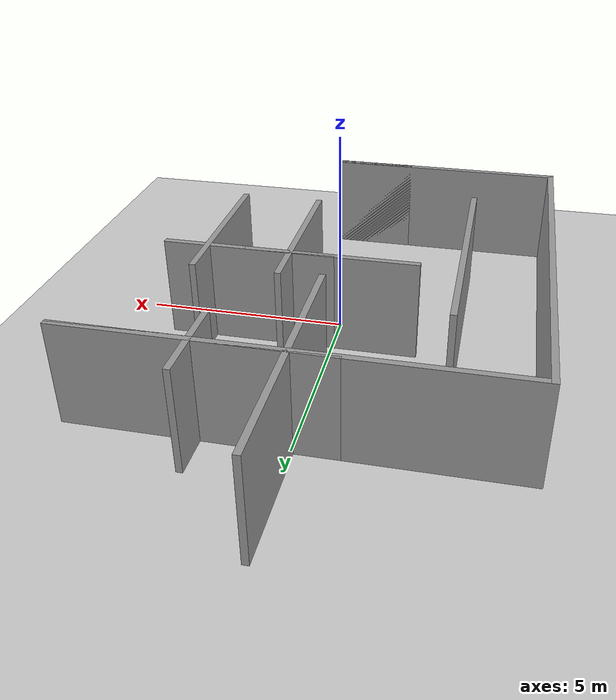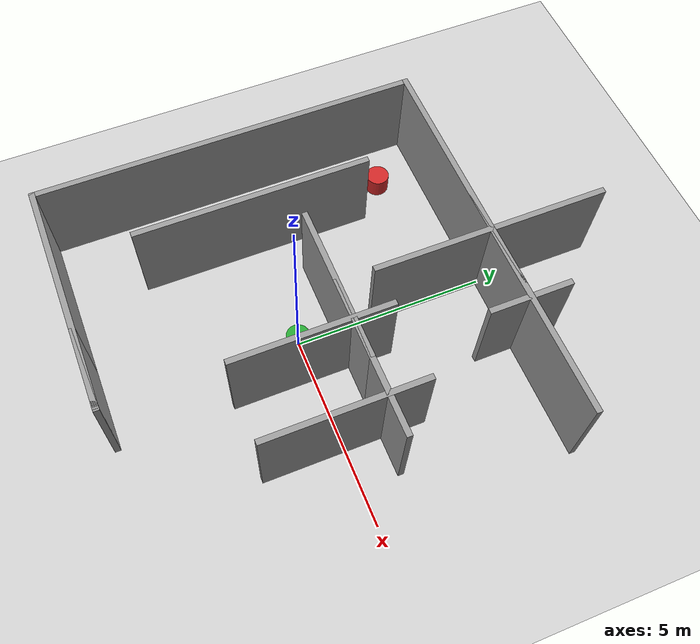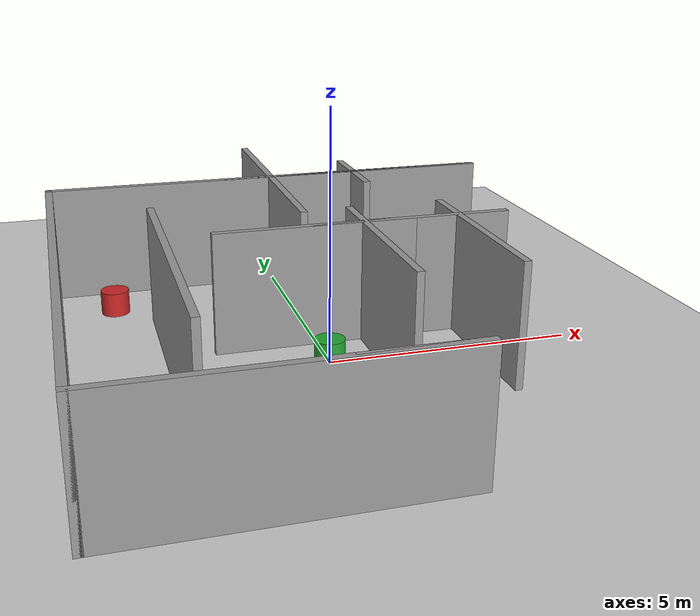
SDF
<sdf version="1.6">
 <world name="default">
  <light name="sun" type="directional">
   <pose>0 0 10 0 -0 0</pose>
   <diffuse>0.8 0.8 0.8 1</diffuse>
   <specular>0.2 0.2 0.2 1</specular>
   <attenuation>
    <range>1000</range>
    <constant>0.9</constant>
    <linear>0.01</linear>
    <quadratic>0.001</quadratic>
   </attenuation>
   <direction>-0.5 0.1 -0.9</direction>
  </light>
  <model name="ground_plane">
   <static>1</static>
   <link name="link">
    <collision name="collision">
     <geometry><plane><normal>0 0 1</normal><size>100 100</size></plane></geometry>
     <surface><friction><ode><mu>100</mu><mu2>50</mu2></ode></friction></surface>
    </collision>
    <visual name="visual">
     <cast_shadows>0</cast_shadows>
     <geometry><plane><normal>0 0 1</normal><size>100 100</size></plane></geometry>
     <material>
      <script><uri>file://media/materials/scripts/gazebo.material</uri><name>Gazebo/Grey</name></script>
     </material>
    </visual>
   </link>
  </model>
  <gravity>0 0 -9.8</gravity>
  <magnetic_field>6e-06 2.3e-05 -4.2e-05</magnetic_field>
  <atmosphere type="adiabatic"/>
  <physics name="default_physics" default="0" type="ode">
   <max_step_size>0.001</max_step_size>
   <real_time_factor>1</real_time_factor>
   <real_time_update_rate>1000</real_time_update_rate>
  </physics>
  <scene><ambient>0.4 0.4 0.4 1</ambient><background>0.7 0.7 0.7 1</background><shadows>1</shadows></scene>
  <spherical_coordinates>
   <surface_model>EARTH_WGS84</surface_model>
   <latitude_deg>0</latitude_deg>
   <longitude_deg>0</longitude_deg>
   <elevation>0</elevation>
   <heading_deg>0</heading_deg>
  </spherical_coordinates>
  <model name="outside">
   <link name="Wall_0">
    <collision name="Wall_0_Collision">
     <geometry><box><size>10.15 0.15 2.5</size></box></geometry>
     <pose>0 0 1.25 0 -0 0</pose>
    </collision>
    <visual name="Wall_0_Visual">
     <pose>0 0 1.25 0 -0 0</pose>
     <geometry><box><size>10.15 0.15 2.5</size></box></geometry>
     <material>
      <script><uri>file://media/materials/scripts/gazebo.material</uri><name>Gazebo/Grey</name></script>
      <ambient>1 1 1 1</ambient>
     </material>
     <meta><layer>0</layer></meta>
    </visual>
    <pose>-5 0 0 0 -0 -1.5708</pose>
   </link>
   <link name="Wall_1">
    <collision name="Wall_1_Collision">
     <geometry><box><size>6.15 0.15 2.5</size></box></geometry>
     <pose>0 0 1.25 0 -0 0</pose>
    </collision>
    <visual name="Wall_1_Visual">
     <pose>0 0 1.25 0 -0 0</pose>
     <geometry><box><size>6.15 0.15 2.5</size></box></geometry>
     <material>
      <script><uri>file://media/materials/scripts/gazebo.material</uri><name>Gazebo/Grey</name></script>
      <ambient>1 1 1 1</ambient>
     </material>
     <meta><layer>0</layer></meta>
    </visual>
    <pose>-2 -5 0 0 -0 0</pose>
   </link>
   <link name="Wall_2">
    <collision name="Wall_2_Collision">
     <geometry><box><size>4.15 0.15 2.5</size></box></geometry>
     <pose>0 0 1.25 0 -0 0</pose>
    </collision>
    <visual name="Wall_2_Visual">
     <pose>0 0 1.25 0 -0 0</pose>
     <geometry><box><size>4.15 0.15 2.5</size></box></geometry>
     <material>
      <script><uri>file://media/materials/scripts/gazebo.material</uri><name>Gazebo/Grey</name></script>
      <ambient>1 1 1 1</ambient>
     </material>
     <meta><layer>0</layer></meta>
    </visual>
    <pose>1 0 0 0 -0 1.5708</pose>
   </link>
   <link name="Wall_3">
    <collision name="Wall_3_Collision">
     <geometry><box><size>4.15 0.15 2.5</size></box></geometry>
     <pose>0 0 1.25 0 -0 0</pose>
    </collision>
    <visual name="Wall_3_Visual">
     <pose>0 0 1.25 0 -0 0</pose>
     <geometry><box><size>4.15 0.15 2.5</size></box></geometry>
     <material>
      <script><uri>file://media/materials/scripts/gazebo.material</uri><name>Gazebo/Grey</name></script>
      <ambient>1 1 1 1</ambient>
     </material>
     <meta><layer>0</layer></meta>
    </visual>
    <pose>0 1 0 0 -0 3.14159</pose>
   </link>
   <link name="Wall_4">
    <collision name="Wall_4_Collision">
     <geometry><box><size>6.15 0.15 2.5</size></box></geometry>
     <pose>0 0 1.25 0 -0 0</pose>
    </collision>
    <visual name="Wall_4_Visual">
     <pose>0 0 1.25 0 -0 0</pose>
     <geometry><box><size>6.15 0.15 2.5</size></box></geometry>
     <material>
      <script><uri>file://media/materials/scripts/gazebo.material</uri><name>Gazebo/Grey</name></script>
      <ambient>1 1 1 1</ambient>
     </material>
     <meta><layer>0</layer></meta>
    </visual>
    <pose>0 5 0 0 -0 1.5708</pose>
   </link>
   <link name="Wall_5">
    <collision name="Wall_5_Collision">
     <geometry><box><size>10.15 0.15 2.5</size></box></geometry>
     <pose>0 0 1.25 0 -0 0</pose>
    </collision>
    <visual name="Wall_5_Visual">
     <pose>0 0 1.25 0 -0 0</pose>
     <geometry><box><size>10.15 0.15 2.5</size></box></geometry>
     <material>
      <script><uri>file://media/materials/scripts/gazebo.material</uri><name>Gazebo/Grey</name></script>
      <ambient>1 1 1 1</ambient>
     </material>
     <meta><layer>0</layer></meta>
    </visual>
    <pose>0 5 0 0 -0 3.14159</pose>
   </link>
   <static>1</static>
  </model>
  <model name="inside">
   <pose>2 -0 0 0 -0 0</pose>
   <link name="Wall_0">
    <collision name="Wall_0_Collision">
     <geometry><box><size>6.15 0.15 2.5</size></box></geometry>
     <pose>0 0 1.25 0 -0 0</pose>
    </collision>
    <visual name="Wall_0_Visual">
     <pose>0 0 1.25 0 -0 0</pose>
     <geometry><box><size>6.15 0.15 2.5</size></box></geometry>
     <material>
      <script><uri>file://media/materials/scripts/gazebo.material</uri><name>Gazebo/Grey</name></script>
      <ambient>1 1 1 1</ambient>
     </material>
     <meta><layer>0</layer></meta>
    </visual>
    <pose>-5 0 0 0 -0 -1.5708</pose>
   </link>
   <link name="Wall_1">
    <collision name="Wall_1_Collision">
     <geometry><box><size>2.15 0.15 2.5</size></box></geometry>
     <pose>0 0 1.25 0 -0 0</pose>
    </collision>
    <visual name="Wall_1_Visual">
     <pose>0 0 1.25 0 -0 0</pose>
     <geometry><box><size>2.15 0.15 2.5</size></box></geometry>
     <material>
      <script><uri>file://media/materials/scripts/gazebo.material</uri><name>Gazebo/Grey</name></script>
      <ambient>1 1 1 1</ambient>
     </material>
     <meta><layer>0</layer></meta>
    </visual>
    <pose>-2 -5 0 0 -0 0</pose>
   </link>
   <link name="Wall_2">
    <collision name="Wall_2_Collision">
     <geometry><box><size>4.15 0.15 2.5</size></box></geometry>
     <pose>0 0 1.25 0 -0 0</pose>
    </collision>
    <visual name="Wall_2_Visual">
     <pose>0 0 1.25 0 -0 0</pose>
     <geometry><box><size>4.15 0.15 2.5</size></box></geometry>
     <material>
      <script><uri>file://media/materials/scripts/gazebo.material</uri><name>Gazebo/Grey</name></script>
      <ambient>1 1 1 1</ambient>
     </material>
     <meta><layer>0</layer></meta>
    </visual>
    <pose>1 0 0 0 -0 1.5708</pose>
   </link>
   <link name="Wall_3">
    <collision name="Wall_3_Collision">
     <geometry><box><size>4.15 0.15 2.5</size></box></geometry>
     <pose>0 0 1.25 0 -0 0</pose>
    </collision>
    <visual name="Wall_3_Visual">
     <pose>0 0 1.25 0 -0 0</pose>
     <geometry><box><size>4.15 0.15 2.5</size></box></geometry>
     <material>
      <script><uri>file://media/materials/scripts/gazebo.material</uri><name>Gazebo/Grey</name></script>
      <ambient>1 1 1 1</ambient>
     </material>
     <meta><layer>0</layer></meta>
    </visual>
    <pose>0 1 0 0 -0 3.14159</pose>
   </link>
   <link name="Wall_4">
    <collision name="Wall_4_Collision">
     <geometry><box><size>2.15 0.15 2.5</size></box></geometry>
     <pose>0 0 1.25 0 -0 0</pose>
    </collision>
    <visual name="Wall_4_Visual">
     <pose>0 0 1.25 0 -0 0</pose>
     <geometry><box><size>2.15 0.15 2.5</size></box></geometry>
     <material>
      <script><uri>file://media/materials/scripts/gazebo.material</uri><name>Gazebo/Grey</name></script>
      <ambient>1 1 1 1</ambient>
     </material>
     <meta><layer>0</layer></meta>
    </visual>
    <pose>0 5 0 0 -0 1.5708</pose>
   </link>
   <link name="Wall_5">
    <collision name="Wall_5_Collision">
     <geometry><box><size>6.15 0.15 2.5</size></box></geometry>
     <pose>0 0 1.25 0 -0 0</pose>
    </collision>
    <visual name="Wall_5_Visual">
     <pose>0 0 1.25 0 -0 0</pose>
     <geometry><box><size>6.15 0.15 2.5</size></box></geometry>
     <material>
      <script><uri>file://media/materials/scripts/gazebo.material</uri><name>Gazebo/Grey</name></script>
      <ambient>1 1 1 1</ambient>
     </material>
     <meta><layer>0</layer></meta>
    </visual>
    <pose>0 5 0 0 -0 3.14159</pose>
   </link>
   <static>1</static>
  </model>
  <model name="goal">
   <pose>-3.8 3.8 0.000 -3e-06 -3e-06 0</pose>
   <link name="link">
    <inertial>
     <mass>1</mass>
     <inertia><ixx>0.145833</ixx><ixy>0</ixy><ixz>0</ixz><iyy>0.145833</iyy><iyz>0</iyz><izz>0.125</izz></inertia>
    </inertial>
    <collision name="collision">
     <geometry><cylinder><radius>0.001</radius><length>1</length></cylinder></geometry>
    </collision>
    <visual name="visual">
     <geometry><cylinder><radius>0.3</radius><length>1</length></cylinder></geometry>
     <material>
      <script><name>Gazebo/Red</name><uri>file://media/materials/scripts/gazebo.material</uri></script>
     </material>
    </visual>
   </link>
  </model>
  <model name="start">
   <pose>0 0 0.000 -3e-06 -3e-06 0</pose>
   <link name="link">
    <inertial>
     <mass>1</mass>
     <inertia><ixx>0.145833</ixx><ixy>0</ixy><ixz>0</ixz><iyy>0.145833</iyy><iyz>0</iyz><izz>0.125</izz></inertia>
    </inertial>
    <collision name="collision">
     <geometry><cylinder><radius>0.001</radius><length>1</length></cylinder></geometry>
    </collision>
    <visual name="visual">
     <geometry><cylinder><radius>0.3</radius><length>1</length></cylinder></geometry>
     <material>
      <script><name>Gazebo/Green</name><uri>file://media/materials/scripts/gazebo.material</uri></script>
     </material>
    </visual>
   </link>
  </model>
 </world>
</sdf>
